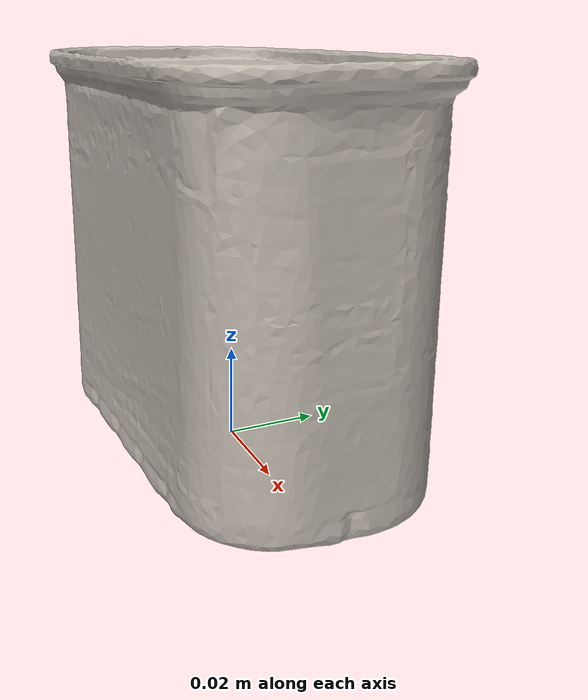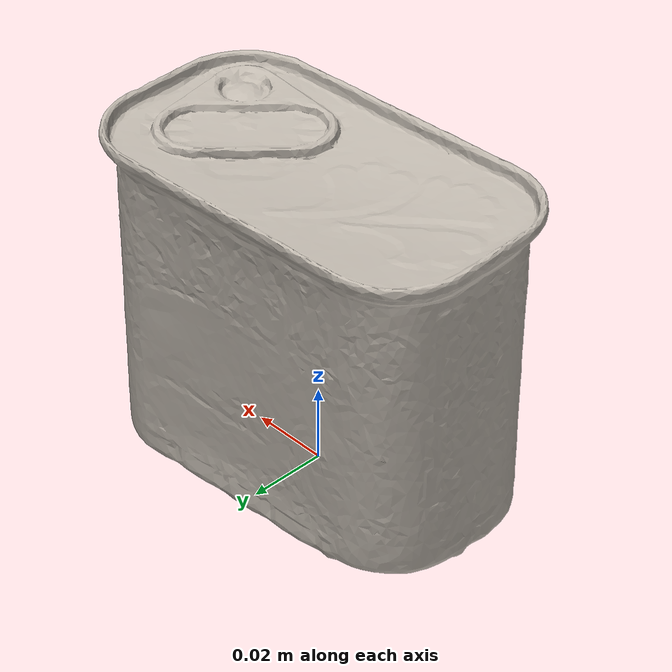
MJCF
<mujoco model="potted_meat_can">
  <compiler angle="radian"/>

  <asset>
    <texture name="potted_meat_can_tex" type="2d" file="potted_meat_can_texture.png"/>
    <material name="potted_meat_can_mat" texture="potted_meat_can_tex" specular="0.5" shininess="0.5"/>
    <mesh name="potted_meat_can_visual" file="potted_meat_can_visual.obj"/>
  </asset>

  <worldbody>
    <body name="potted_meat_can" pos="0 0 0.042">
      <freejoint name="potted_meat_can_joint"/>

      <!-- Collision geometry - box approximation for SPAM can -->
      <geom name="potted_meat_can_collision"
            type="box"
            size="0.051 0.029 0.042"
            mass="0.35"
            friction="0.6 0.005 0.0001"
            contype="1"
            conaffinity="1"
            rgba="0 0 0 0"/>

      <!-- Visual mesh -->
      <geom name="potted_meat_can_visual"
            type="mesh"
            mesh="potted_meat_can_visual"
            material="potted_meat_can_mat"
            contype="0"
            conaffinity="0"/>
    </body>
  </worldbody>
</mujoco>
